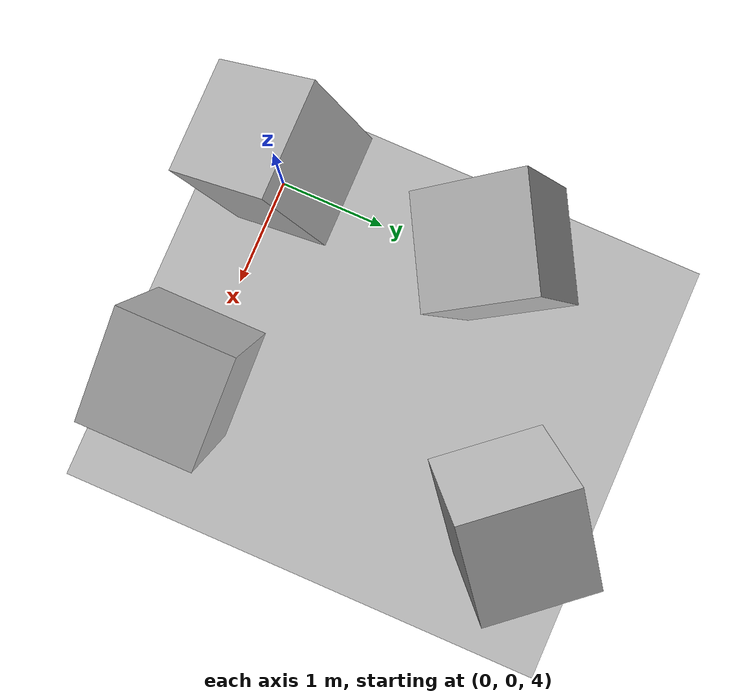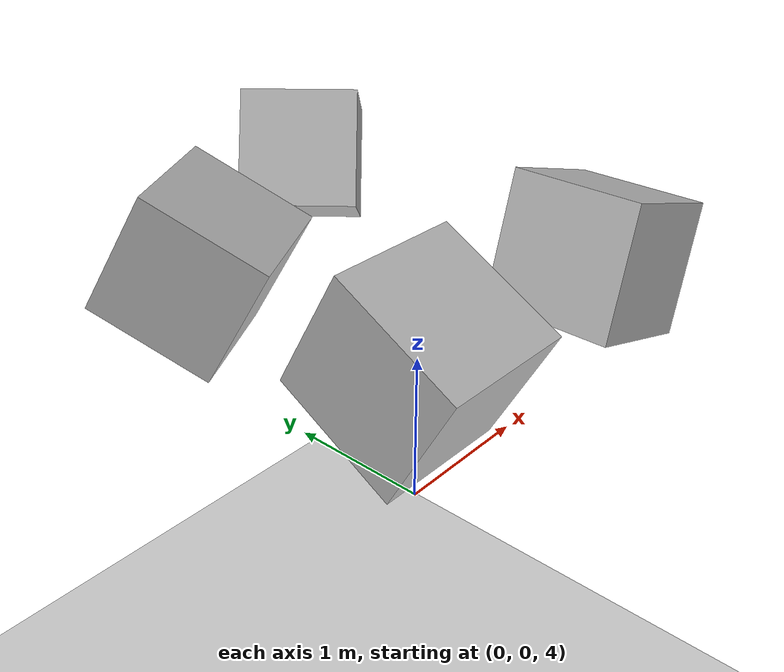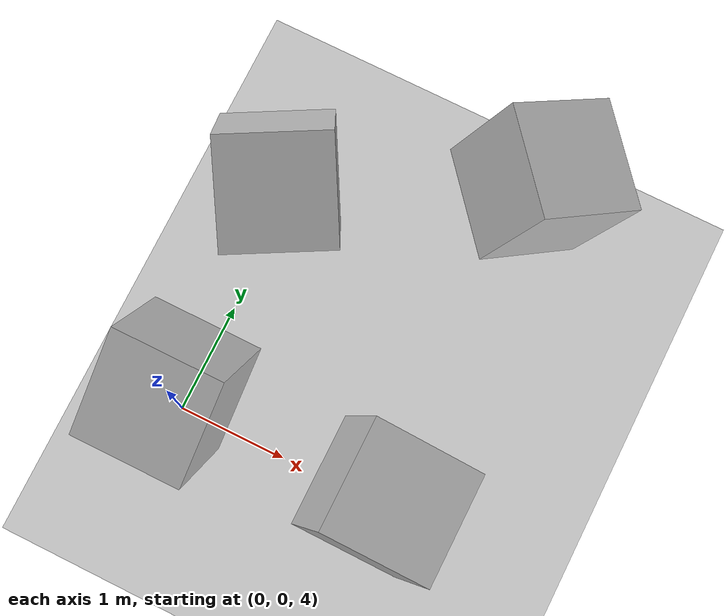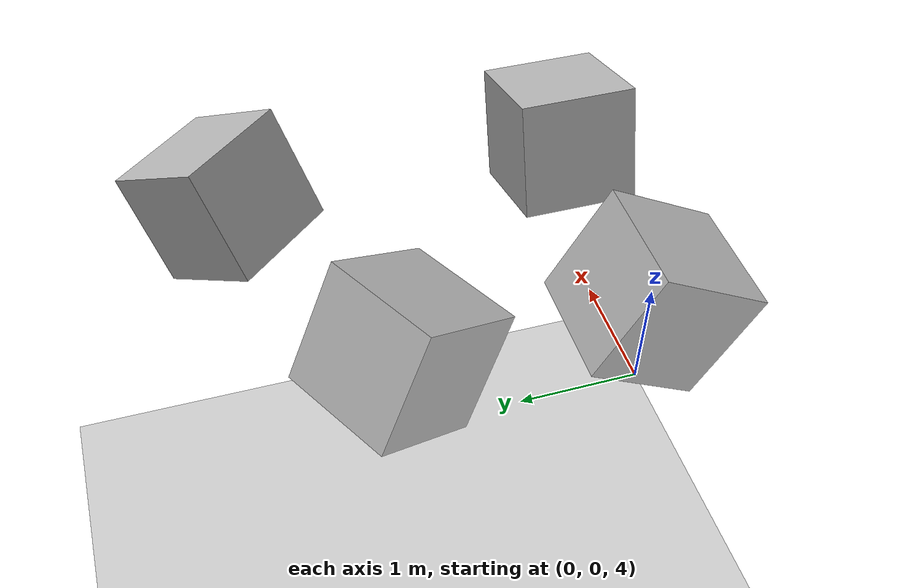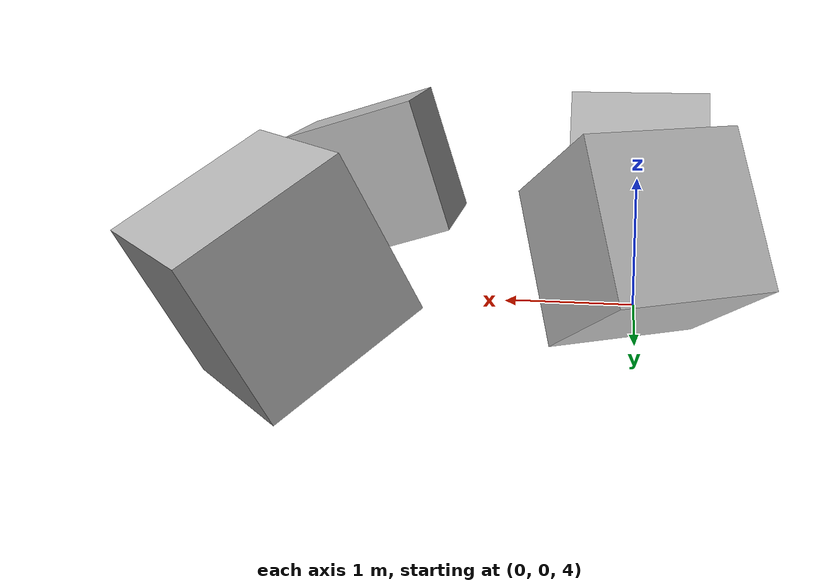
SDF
<?xml version="1.0" ?>
<gazebo version="1.2">
  <world name="default">
    <include><uri>model://ground_plane</uri></include>
    <include><uri>model://sun</uri></include>

    <model name="model">
      <pose>0 0 5 0 0 0</pose>
      <link name="link">
        <collision name="collision1">
          <pose>0 0 0.11 0.5 0 0</pose>
          <geometry>
            <box>
              <size>1 1 1</size>
            </box>
          </geometry>
        </collision>
        <visual name="visual1">
          <pose>0 0 0 0.5 0 0</pose>
          <geometry>
            <box>
              <size>1 1 1</size>
            </box>
          </geometry>
        </visual>

        <collision name="collision2">
          <pose>2 0 0.1 0 0.3 0</pose>
          <geometry>
            <box>
              <size>1 1 1</size>
            </box>
          </geometry>
        </collision>
        <visual name="visual2">
          <pose>2 0 0 0 0.3 0</pose>
          <geometry>
            <box>
              <size>1 1 1</size>
            </box>
          </geometry>
        </visual>

        <collision name="collision3">
          <pose>0 2 0.12 0.5 0 0.5</pose>
          <geometry>
            <box>
              <size>1 1 1</size>
            </box>
          </geometry>
        </collision>
        <visual name="visual3">
          <pose>0 2 0 0.5 0 0.5</pose>
          <geometry>
            <box>
              <size>1 1 1</size>
            </box>
          </geometry>
        </visual>

        <collision name="collision4">
          <pose>2 3 0 0 0.5 0.7</pose>
          <geometry>
            <box>
              <size>1 1 1</size>
            </box>
          </geometry>
        </collision>
        <visual name="visual4">
          <pose>2 3 0 0 0.5 0.7</pose>
          <geometry>
            <box>
              <size>1 1 1</size>
            </box>
          </geometry>
        </visual>
      </link>
    </model>
  </world>
</gazebo>
